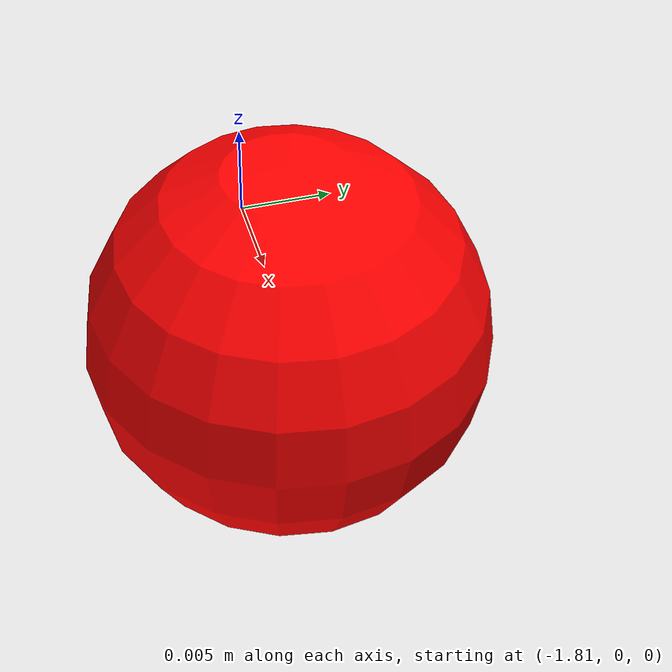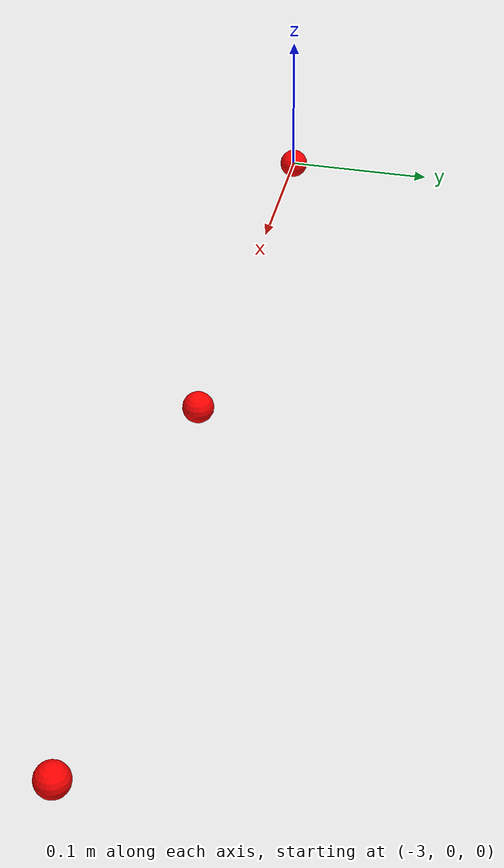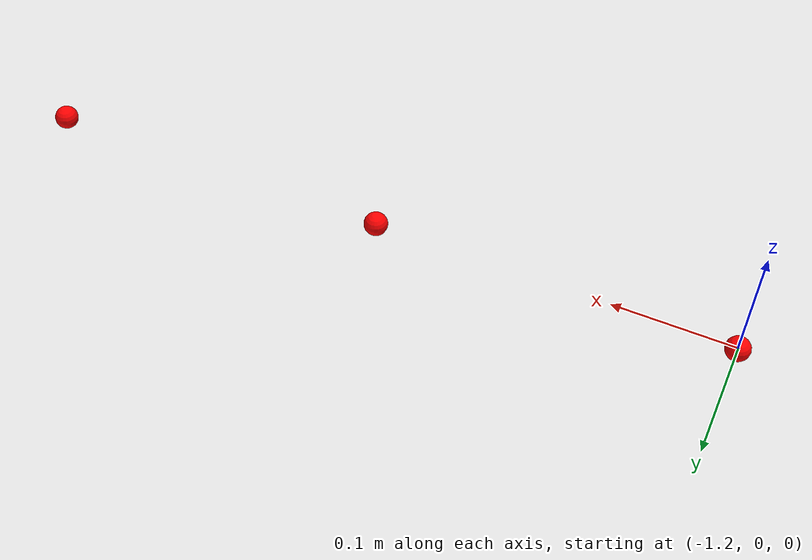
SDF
<sdf version="1.6">
 <world name="waves">
  <plugin filename="gz-sim-physics-system" name="gz::sim::systems::Physics"/>
  <plugin filename="gz-sim-sensors-system" name="gz::sim::systems::Sensors">
   <render_engine>ogre2</render_engine>
   <background_color>0.8 0.8 0.8</background_color>
  </plugin>
  <plugin filename="gz-sim-scene-broadcaster-system" name="gz::sim::systems::SceneBroadcaster"/>
  <plugin filename="gz-sim-user-commands-system" name="gz::sim::systems::UserCommands"/>
  <plugin filename="gz-sim-imu-system" name="gz::sim::systems::Imu"/>
  <plugin filename="gz-sim-navsat-system" name="gz::sim::systems::NavSat"/>
  <spherical_coordinates>
   <surface_model>EARTH_WGS84</surface_model>
   <world_frame_orientation>ENU</world_frame_orientation>
   <latitude_deg>-22.986687</latitude_deg>
   <longitude_deg>-43.202501</longitude_deg>
   <elevation>0</elevation>
   <heading_deg>0</heading_deg>
  </spherical_coordinates>
  <scene><ambient>1.0 1.0 1.0</ambient><background>0.8 0.8 0.8</background></scene>
  <light type="directional" name="sun">
   <pose>0 0 10 0 0 0</pose>
   <diffuse>0.8 0.8 0.8 1</diffuse>
   <specular>0.6 0.6 0.6 1</specular>
   <direction>-0.5 0.1 -0.9</direction>
  </light>
  <include><pose>-0.3 0 0 0 0 0</pose><uri>model://barrage_buoy</uri><name>barrage_buoy_1</name></include>
  <joint name="blueboat_to_barragebuoy1_joint" type="fixed">
   <parent>blueboat::base_link</parent>
   <child>barrage_buoy_1::base_link</child>
  </joint>
  <include><pose>-0.6 0 0 0 0 0</pose><uri>model://barrage_buoy</uri><name>barrage_buoy_2</name></include>
  <joint name="barragebuoy1_to_barragebuoy2_joint" type="universal">
   <parent>barrage_buoy_1::base_link</parent>
   <child>barrage_buoy_2::base_link</child>
   <axis>
    <xyz>0 1 0</xyz>
    <limit><lower>-0.5</lower><upper>0.5</upper></limit>
    <dynamics><damping>0.05</damping></dynamics>
   </axis>
   <axis2>
    <xyz>1 0 0</xyz>
    <limit><lower>-0.5</lower><upper>0.5</upper></limit>
    <dynamics><damping>0.05</damping></dynamics>
   </axis2>
  </joint>
  <include><pose>-0.9 0 0 0 0 0</pose><uri>model://barrage_buoy</uri><name>barrage_buoy_3</name></include>
  <joint name="barragebuoy2_to_barragebuoy3_joint" type="universal">
   <parent>barrage_buoy_2::base_link</parent>
   <child>barrage_buoy_3::base_link</child>
   <axis>
    <xyz>0 1 0</xyz>
    <limit><lower>-0.5</lower><upper>0.5</upper></limit>
    <dynamics><damping>0.05</damping></dynamics>
   </axis>
   <axis2>
    <xyz>1 0 0</xyz>
    <limit><lower>-0.5</lower><upper>0.5</upper></limit>
    <dynamics><damping>0.05</damping></dynamics>
   </axis2>
  </joint>
  <include><pose>-1.2 0 0 0 0 0</pose><uri>model://barrage_buoy</uri><name>barrage_buoy_4</name></include>
  <joint name="barragebuoy3_to_barragebuoy4_joint" type="universal">
   <parent>barrage_buoy_3::base_link</parent>
   <child>barrage_buoy_4::base_link</child>
   <axis>
    <xyz>0 1 0</xyz>
    <limit><lower>-0.5</lower><upper>0.5</upper></limit>
    <dynamics><damping>0.05</damping></dynamics>
   </axis>
   <axis2>
    <xyz>1 0 0</xyz>
    <limit><lower>-0.5</lower><upper>0.5</upper></limit>
    <dynamics><damping>0.05</damping></dynamics>
   </axis2>
  </joint>
  <include><pose>-1.5 0 0 0 0 0</pose><uri>model://barrage_buoy</uri><name>barrage_buoy_5</name></include>
  <joint name="barragebuoy4_to_barragebuoy5_joint" type="universal">
   <parent>barrage_buoy_4::base_link</parent>
   <child>barrage_buoy_5::base_link</child>
   <axis>
    <xyz>0 1 0</xyz>
    <limit><lower>-0.5</lower><upper>0.5</upper></limit>
    <dynamics><damping>0.05</damping></dynamics>
   </axis>
   <axis2>
    <xyz>1 0 0</xyz>
    <limit><lower>-0.5</lower><upper>0.5</upper></limit>
    <dynamics><damping>0.05</damping></dynamics>
   </axis2>
  </joint>
  <include><pose>-1.8 0 0 0 0 0</pose><uri>model://barrage_buoy</uri><name>barrage_buoy_6</name></include>
  <joint name="barragebuoy5_to_barragebuoy6_joint" type="universal">
   <parent>barrage_buoy_5::base_link</parent>
   <child>barrage_buoy_6::base_link</child>
   <axis>
    <xyz>0 1 0</xyz>
    <limit><lower>-0.5</lower><upper>0.5</upper></limit>
    <dynamics><damping>0.05</damping></dynamics>
   </axis>
   <axis2>
    <xyz>1 0 0</xyz>
    <limit><lower>-0.5</lower><upper>0.5</upper></limit>
    <dynamics><damping>0.05</damping></dynamics>
   </axis2>
  </joint>
  <include><pose>-2.1 0 0 0 0 0</pose><uri>model://barrage_buoy</uri><name>barrage_buoy_7</name></include>
  <joint name="barragebuoy6_to_barragebuoy7_joint" type="universal">
   <parent>barrage_buoy_6::base_link</parent>
   <child>barrage_buoy_7::base_link</child>
   <axis>
    <xyz>0 1 0</xyz>
    <limit><lower>-0.5</lower><upper>0.5</upper></limit>
    <dynamics><damping>0.05</damping></dynamics>
   </axis>
   <axis2>
    <xyz>1 0 0</xyz>
    <limit><lower>-0.5</lower><upper>0.5</upper></limit>
    <dynamics><damping>0.05</damping></dynamics>
   </axis2>
  </joint>
  <include><pose>-2.4 0 0 0 0 0</pose><uri>model://barrage_buoy</uri><name>barrage_buoy_8</name></include>
  <joint name="barragebuoy7_to_barragebuoy8_joint" type="universal">
   <parent>barrage_buoy_7::base_link</parent>
   <child>barrage_buoy_8::base_link</child>
   <axis>
    <xyz>0 1 0</xyz>
    <limit><lower>-0.5</lower><upper>0.5</upper></limit>
    <dynamics><damping>0.05</damping></dynamics>
   </axis>
   <axis2>
    <xyz>1 0 0</xyz>
    <limit><lower>-0.5</lower><upper>0.5</upper></limit>
    <dynamics><damping>0.05</damping></dynamics>
   </axis2>
  </joint>
  <include><pose>-2.7 0 0 0 0 0</pose><uri>model://barrage_buoy</uri><name>barrage_buoy_9</name></include>
  <joint name="barragebuoy8_to_barragebuoy9_joint" type="universal">
   <parent>barrage_buoy_8::base_link</parent>
   <child>barrage_buoy_9::base_link</child>
   <axis>
    <xyz>0 1 0</xyz>
    <limit><lower>-0.5</lower><upper>0.5</upper></limit>
    <dynamics><damping>0.05</damping></dynamics>
   </axis>
   <axis2>
    <xyz>1 0 0</xyz>
    <limit><lower>-0.5</lower><upper>0.5</upper></limit>
    <dynamics><damping>0.05</damping></dynamics>
   </axis2>
  </joint>
  <include><pose>-3.0 0 0 0 0 0</pose><uri>model://barrage_buoy</uri><name>barrage_buoy_10</name></include>
  <joint name="barragebuoy9_to_barragebuoy10_joint" type="universal">
   <parent>barrage_buoy_9::base_link</parent>
   <child>barrage_buoy_10::base_link</child>
   <axis>
    <xyz>0 1 0</xyz>
    <limit><lower>-0.5</lower><upper>0.5</upper></limit>
    <dynamics><damping>0.05</damping></dynamics>
   </axis>
   <axis2>
    <xyz>1 0 0</xyz>
    <limit><lower>-0.5</lower><upper>0.5</upper></limit>
    <dynamics><damping>0.05</damping></dynamics>
   </axis2>
  </joint>
  <joint name="barragebuoy10_to_bluerov2_joint" type="universal">
   <parent>barrage_buoy_10::base_link</parent>
   <child>bluerov2_heavy::base_link</child>
   <pose>-0.5 0.1 -0.3 0 0 0</pose>
   <axis>
    <xyz>0 1 0</xyz>
    <limit><lower>-0.5</lower><upper>0.5</upper></limit>
    <dynamics><damping>0.05</damping></dynamics>
   </axis>
   <axis2>
    <xyz>1 0 0</xyz>
    <limit><lower>-0.5</lower><upper>0.5</upper></limit>
    <dynamics><damping>0.05</damping></dynamics>
   </axis2>
  </joint>
 </world>
</sdf>

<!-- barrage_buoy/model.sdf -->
<sdf version="1.6">
  <model name="barrage_buoy">
    <plugin
        filename="gz-waves1-hydrodynamics-system"
        name="gz::sim::systems::Hydrodynamics">
    </plugin>
    <link name="base_link">
      <visual name="visual">
        <geometry>
          <sphere>
            <radius>0.01</radius>
          </sphere>
        </geometry>
        <material>
          <ambient>1.0 0.0 0.0 1.0</ambient>  <!-- Bright red -->
          <diffuse>1.0 0.0 0.0 1.0</diffuse>  <!-- Bright red -->
          <specular>0.8 0.8 0.8 1.0</specular> <!-- Slightly reflective -->
        </material>
      </visual>
      <collision name="collision">
        <geometry>
          <sphere>
            <radius>0.01</radius>
          </sphere>
        </geometry>
      </collision>
      <inertial>
        <mass>0.0042</mass> <!-- Reduced mass for neutral buoyancy -->
        <inertia>
          <!-- Recalculated based on the solid sphere inertia formula -->
          <ixx>0.00000006</ixx> <!-- 2/5 * mass * radius^2 -->
          <ixy>0.0</ixy>
          <ixz>0.0</ixz>
          <iyy>0.00000006</iyy>
          <iyz>0.0</iyz>
          <izz>0.00000006</izz>
        </inertia>
      </inertial>
    </link>
  </model>
</sdf>
